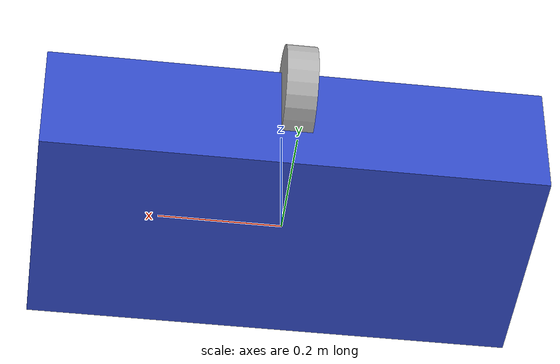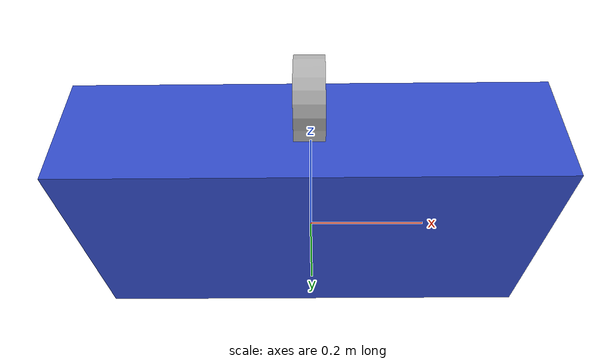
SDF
<?xml version="1.0" ?>
<sdf version="1.9">
  <model name="simple_train">
    <pose>0 0 0.05 0 0 0</pose>

    <link name="base">
      <inertial><mass>10</mass></inertial>
      <collision name="base_col">
        <geometry><box><size>0.8 0.4 0.2</size></box></geometry>
      </collision>
      <visual name="base_vis">
        <geometry>
         <box>
            <size>0.8 0.4 0.2</size>
          </box>
        </geometry>
        <material>
          <diffuse>0.2 0.3 0.8 1</diffuse>
        </material>
      </visual>

      <!-- Optional 2D LiDAR -->
      <sensor name="lidar" type="gpu_lidar">
        <pose>0.3 0 0.15 0 0 0</pose>
        <update_rate>15</update_rate>
        <lidar>
          <scan><horizontal><samples>720</samples><min_angle>-1.57</min_angle><max_angle>1.57</max_angle></horizontal></scan>
          <range><min>0.05</min><max>20.0</max><resolution>0.01</resolution></range>
        </lidar>
        <always_on>1</always_on>
      </sensor>
    </link>

    <!-- Wheels (cosmetic) -->
    <link name="wheel_left">
      <pose>0 0.2 0.05 0 1.5708 0</pose>
      <collision name="col"><geometry><cylinder><radius>0.08</radius><length>0.05</length></cylinder></geometry></collision>
      <visual name="vis"><geometry><cylinder><radius>0.08</radius><length>0.05</length></cylinder></geometry></visual>
    </link>
    <link name="wheel_right">
      <pose>0 -0.2 0.05 0 1.5708 0</pose>
      <collision name="col"><geometry><cylinder><radius>0.08</radius><length>0.05</length></cylinder></geometry></collision>
      <visual name="vis"><geometry><cylinder><radius>0.08</radius><length>0.05</length></cylinder></geometry></visual>
    </link>

    <joint name="left_wheel_hinge" type="revolute">
      <parent>base</parent><child>wheel_left</child>
      <axis><xyz>0 1 0</xyz></axis>
    </joint>
    <joint name="right_wheel_hinge" type="revolute">
      <parent>base</parent><child>wheel_right</child>
      <axis><xyz>0 1 0</xyz></axis>
    </joint>

    <!-- Diff-drive plugin (Gazebo Sim system) -->
    <plugin name="gz::sim::systems::DiffDrive" filename="gz-sim-diff-drive-system">
      <left_joint>left_wheel_hinge</left_joint>
      <right_joint>right_wheel_hinge</right_joint>
      <wheel_separation>0.4</wheel_separation>
      <wheel_radius>0.08</wheel_radius>
      <odom_publish_frequency>30</odom_publish_frequency>
      <topic>cmd_vel</topic>
      <odom_frame>odom</odom_frame>
      <robot_base_frame>base_link</robot_base_frame>
    </plugin>

    <plugin name="gz::sim::systems::PosePublisher" filename="gz-sim-pose-publisher-system">
      <publish_link_pose>true</publish_link_pose>
      <publish_nested_model_pose>true</publish_nested_model_pose>
      <static_publisher>true</static_publisher>
    </plugin>
  </model>
</sdf>
